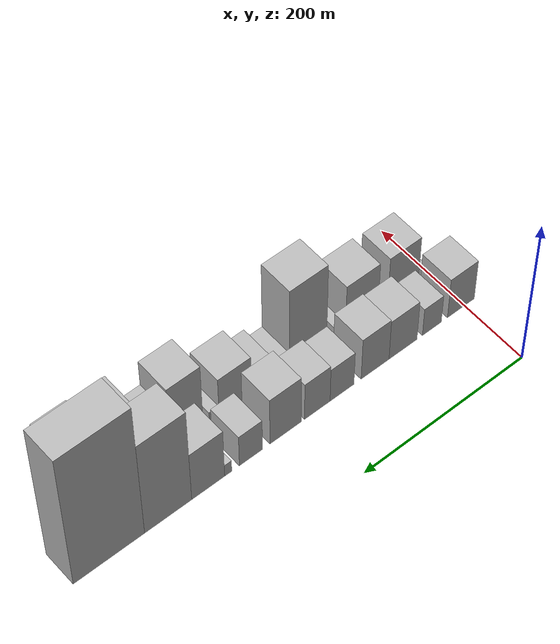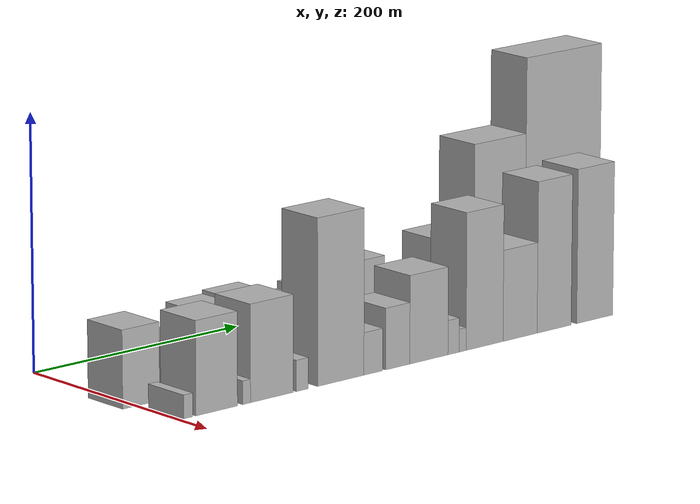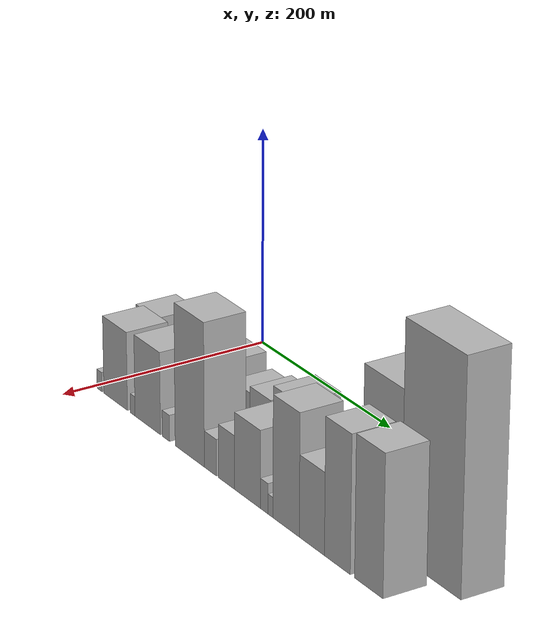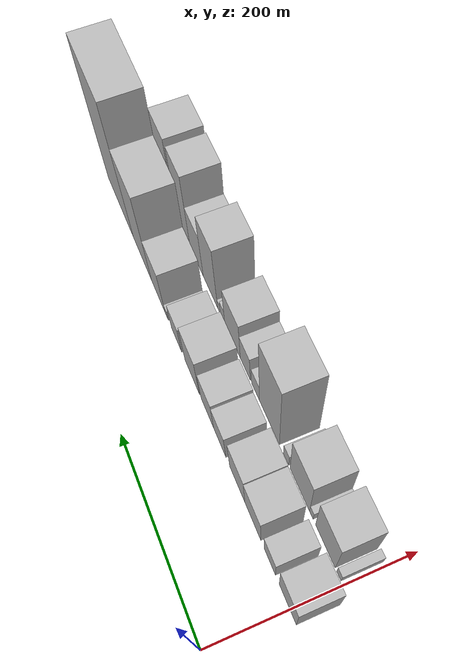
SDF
<sdf version="1.6">
 <world name="default">
  <model name="building_12">
   <static>1</static>
   <pose>100.0000 4.7327 0 0.000000 0.000000 0.000000</pose>
   <link name="link">
    <pose>0 0 30.00 0 0 0</pose>
    <collision name="collision"><geometry><box><size>40.0000 35.2528 60.0000</size></box></geometry></collision>
    <visual name="visual">
     <cast_shadows>0</cast_shadows>
     <geometry><box><size>40.0000 35.2528 60.0000</size></box></geometry>
     <material>
      <script>
       <uri>model://HANNAS_wall/materials/scripts</uri>
       <uri>model://HANNAS_wall/materials/textures</uri>
       <name>vrc/HANNAS_wall</name>
      </script>
     </material>
    </visual>
   </link>
  </model>
  <model name="building_13">
   <static>1</static>
   <pose>100.0000 42.6432 0 0.000000 0.000000 0.000000</pose>
   <link name="link">
    <pose>0 0 21.00 0 0 0</pose>
    <collision name="collision"><geometry><box><size>40.0000 24.5683 42.0000</size></box></geometry></collision>
    <visual name="visual">
     <cast_shadows>0</cast_shadows>
     <geometry><box><size>40.0000 24.5683 42.0000</size></box></geometry>
     <material>
      <script>
       <uri>model://HANNAS_wall/materials/scripts</uri>
       <uri>model://HANNAS_wall/materials/textures</uri>
       <name>vrc/HANNAS_wall</name>
      </script>
     </material>
    </visual>
   </link>
  </model>
  <model name="building_14">
   <static>1</static>
   <pose>100.0000 79.8603 0 0.000000 0.000000 0.000000</pose>
   <link name="link">
    <pose>0 0 30.00 0 0 0</pose>
    <collision name="collision"><geometry><box><size>40.0000 35.8658 60.0000</size></box></geometry></collision>
    <visual name="visual">
     <cast_shadows>0</cast_shadows>
     <geometry><box><size>40.0000 35.8658 60.0000</size></box></geometry>
     <material>
      <script>
       <uri>model://HANNAS_wall/materials/scripts</uri>
       <uri>model://HANNAS_wall/materials/textures</uri>
       <name>vrc/HANNAS_wall</name>
      </script>
     </material>
    </visual>
   </link>
  </model>
  <model name="building_15">
   <static>1</static>
   <pose>100.0000 115.4482 0 0.000000 0.000000 0.000000</pose>
   <link name="link">
    <pose>0 0 31.50 0 0 0</pose>
    <collision name="collision"><geometry><box><size>40.0000 35.3100 63.0000</size></box></geometry></collision>
    <visual name="visual">
     <cast_shadows>0</cast_shadows>
     <geometry><box><size>40.0000 35.3100 63.0000</size></box></geometry>
     <material>
      <script>
       <uri>model://HANNAS_wall/materials/scripts</uri>
       <uri>model://HANNAS_wall/materials/textures</uri>
       <name>vrc/HANNAS_wall</name>
      </script>
     </material>
    </visual>
   </link>
  </model>
  <model name="building_16">
   <static>1</static>
   <pose>100.0000 157.0196 0 0.000000 0.000000 0.000000</pose>
   <link name="link">
    <pose>0 0 25.50 0 0 0</pose>
    <collision name="collision"><geometry><box><size>40.0000 29.8329 51.0000</size></box></geometry></collision>
    <visual name="visual">
     <cast_shadows>0</cast_shadows>
     <geometry><box><size>40.0000 29.8329 51.0000</size></box></geometry>
     <material>
      <script>
       <uri>model://HANNAS_wall/materials/scripts</uri>
       <uri>model://HANNAS_wall/materials/textures</uri>
       <name>vrc/HANNAS_wall</name>
      </script>
     </material>
    </visual>
   </link>
  </model>
  <model name="building_17">
   <static>1</static>
   <pose>100.0000 187.7268 0 0.000000 0.000000 0.000000</pose>
   <link name="link">
    <pose>0 0 28.50 0 0 0</pose>
    <collision name="collision"><geometry><box><size>40.0000 31.5815 57.0000</size></box></geometry></collision>
    <visual name="visual">
     <cast_shadows>0</cast_shadows>
     <geometry><box><size>40.0000 31.5815 57.0000</size></box></geometry>
     <material>
      <script>
       <uri>model://HANNAS_wall/materials/scripts</uri>
       <uri>model://HANNAS_wall/materials/textures</uri>
       <name>vrc/HANNAS_wall</name>
      </script>
     </material>
    </visual>
   </link>
  </model>
  <model name="building_18">
   <static>1</static>
   <pose>100.0000 226.5355 0 0.000000 0.000000 0.000000</pose>
   <link name="link">
    <pose>0 0 36.00 0 0 0</pose>
    <collision name="collision"><geometry><box><size>40.0000 38.0360 72.0000</size></box></geometry></collision>
    <visual name="visual">
     <cast_shadows>0</cast_shadows>
     <geometry><box><size>40.0000 38.0360 72.0000</size></box></geometry>
     <material>
      <script>
       <uri>model://HANNAS_wall/materials/scripts</uri>
       <uri>model://HANNAS_wall/materials/textures</uri>
       <name>vrc/HANNAS_wall</name>
      </script>
     </material>
    </visual>
   </link>
  </model>
  <model name="building_19">
   <static>1</static>
   <pose>100.0000 268.4300 0 0.000000 0.000000 0.000000</pose>
   <link name="link">
    <pose>0 0 24.00 0 0 0</pose>
    <collision name="collision"><geometry><box><size>40.0000 27.7530 48.0000</size></box></geometry></collision>
    <visual name="visual">
     <cast_shadows>0</cast_shadows>
     <geometry><box><size>40.0000 27.7530 48.0000</size></box></geometry>
     <material>
      <script>
       <uri>model://HANNAS_wall/materials/scripts</uri>
       <uri>model://HANNAS_wall/materials/textures</uri>
       <name>vrc/HANNAS_wall</name>
      </script>
     </material>
    </visual>
   </link>
  </model>
  <model name="building_20">
   <static>1</static>
   <pose>100.0000 295.5262 0 0.000000 0.000000 0.000000</pose>
   <link name="link">
    <pose>0 0 9.00 0 0 0</pose>
    <collision name="collision"><geometry><box><size>40.0000 8.4394 18.0000</size></box></geometry></collision>
    <visual name="visual">
     <cast_shadows>0</cast_shadows>
     <geometry><box><size>40.0000 8.4394 18.0000</size></box></geometry>
     <material>
      <script>
       <uri>model://HANNAS_wall/materials/scripts</uri>
       <uri>model://HANNAS_wall/materials/textures</uri>
       <name>vrc/HANNAS_wall</name>
      </script>
     </material>
    </visual>
   </link>
  </model>
  <model name="building_21">
   <static>1</static>
   <pose>100.0000 319.1508 0 0.000000 0.000000 0.000000</pose>
   <link name="link">
    <pose>0 0 37.50 0 0 0</pose>
    <collision name="collision"><geometry><box><size>40.0000 38.8098 75.0000</size></box></geometry></collision>
    <visual name="visual">
     <cast_shadows>0</cast_shadows>
     <geometry><box><size>40.0000 38.8098 75.0000</size></box></geometry>
     <material>
      <script>
       <uri>model://HANNAS_wall/materials/scripts</uri>
       <uri>model://HANNAS_wall/materials/textures</uri>
       <name>vrc/HANNAS_wall</name>
      </script>
     </material>
    </visual>
   </link>
  </model>
  <model name="building_22">
   <static>1</static>
   <pose>100.0000 365.8155 0 0.000000 0.000000 0.000000</pose>
   <link name="link">
    <pose>0 0 72.00 0 0 0</pose>
    <collision name="collision"><geometry><box><size>40.0000 54.5195 144.0000</size></box></geometry></collision>
    <visual name="visual">
     <cast_shadows>0</cast_shadows>
     <geometry><box><size>40.0000 54.5195 144.0000</size></box></geometry>
     <material>
      <script>
       <uri>model://HANNAS_wall/materials/scripts</uri>
       <uri>model://HANNAS_wall/materials/textures</uri>
       <name>vrc/HANNAS_wall</name>
      </script>
     </material>
    </visual>
   </link>
  </model>
  <model name="building_23">
   <static>1</static>
   <pose>100.0000 433.3794 0 0.000000 0.000000 0.000000</pose>
   <link name="link">
    <pose>0 0 102.00 0 0 0</pose>
    <collision name="collision"><geometry><box><size>40.0000 80.6083 204.0000</size></box></geometry></collision>
    <visual name="visual">
     <cast_shadows>0</cast_shadows>
     <geometry><box><size>40.0000 80.6083 204.0000</size></box></geometry>
     <material>
      <script>
       <uri>model://HANNAS_wall/materials/scripts</uri>
       <uri>model://HANNAS_wall/materials/textures</uri>
       <name>vrc/HANNAS_wall</name>
      </script>
     </material>
    </visual>
   </link>
  </model>
  <model name="building_38">
   <static>1</static>
   <pose>149.0000 8.5212 0 0.000000 0.000000 0.000000</pose>
   <link name="link">
    <pose>0 0 9.00 0 0 0</pose>
    <collision name="collision"><geometry><box><size>40.0000 8.6485 18.0000</size></box></geometry></collision>
    <visual name="visual">
     <cast_shadows>0</cast_shadows>
     <geometry><box><size>40.0000 8.6485 18.0000</size></box></geometry>
     <material>
      <script>
       <uri>model://HANNAS_wall/materials/scripts</uri>
       <uri>model://HANNAS_wall/materials/textures</uri>
       <name>vrc/HANNAS_wall</name>
      </script>
     </material>
    </visual>
   </link>
  </model>
  <model name="building_39">
   <static>1</static>
   <pose>149.0000 35.7795 0 0.000000 0.000000 0.000000</pose>
   <link name="link">
    <pose>0 0 36.00 0 0 0</pose>
    <collision name="collision"><geometry><box><size>40.0000 39.8682 72.0000</size></box></geometry></collision>
    <visual name="visual">
     <cast_shadows>0</cast_shadows>
     <geometry><box><size>40.0000 39.8682 72.0000</size></box></geometry>
     <material>
      <script>
       <uri>model://HANNAS_wall/materials/scripts</uri>
       <uri>model://HANNAS_wall/materials/textures</uri>
       <name>vrc/HANNAS_wall</name>
      </script>
     </material>
    </visual>
   </link>
  </model>
  <model name="building_40">
   <static>1</static>
   <pose>149.0000 64.5124 0 0.000000 0.000000 0.000000</pose>
   <link name="link">
    <pose>0 0 9.00 0 0 0</pose>
    <collision name="collision"><geometry><box><size>40.0000 7.5975 18.0000</size></box></geometry></collision>
    <visual name="visual">
     <cast_shadows>0</cast_shadows>
     <geometry><box><size>40.0000 7.5975 18.0000</size></box></geometry>
     <material>
      <script>
       <uri>model://HANNAS_wall/materials/scripts</uri>
       <uri>model://HANNAS_wall/materials/textures</uri>
       <name>vrc/HANNAS_wall</name>
      </script>
     </material>
    </visual>
   </link>
  </model>
  <model name="building_41">
   <static>1</static>
   <pose>149.0000 89.2406 0 0.000000 0.000000 0.000000</pose>
   <link name="link">
    <pose>0 0 37.50 0 0 0</pose>
    <collision name="collision"><geometry><box><size>40.0000 41.8590 75.0000</size></box></geometry></collision>
    <visual name="visual">
     <cast_shadows>0</cast_shadows>
     <geometry><box><size>40.0000 41.8590 75.0000</size></box></geometry>
     <material>
      <script>
       <uri>model://HANNAS_wall/materials/scripts</uri>
       <uri>model://HANNAS_wall/materials/textures</uri>
       <name>vrc/HANNAS_wall</name>
      </script>
     </material>
    </visual>
   </link>
  </model>
  <model name="building_42">
   <static>1</static>
   <pose>149.0000 119.0910 0 0.000000 0.000000 0.000000</pose>
   <link name="link">
    <pose>0 0 12.00 0 0 0</pose>
    <collision name="collision"><geometry><box><size>40.0000 11.8417 24.0000</size></box></geometry></collision>
    <visual name="visual">
     <cast_shadows>0</cast_shadows>
     <geometry><box><size>40.0000 11.8417 24.0000</size></box></geometry>
     <material>
      <script>
       <uri>model://HANNAS_wall/materials/scripts</uri>
       <uri>model://HANNAS_wall/materials/textures</uri>
       <name>vrc/HANNAS_wall</name>
      </script>
     </material>
    </visual>
   </link>
  </model>
  <model name="building_43">
   <static>1</static>
   <pose>149.0000 157.1485 0 0.000000 0.000000 0.000000</pose>
   <link name="link">
    <pose>0 0 64.50 0 0 0</pose>
    <collision name="collision"><geometry><box><size>40.0000 46.2735 129.0000</size></box></geometry></collision>
    <visual name="visual">
     <cast_shadows>0</cast_shadows>
     <geometry><box><size>40.0000 46.2735 129.0000</size></box></geometry>
     <material>
      <script>
       <uri>model://HANNAS_wall/materials/scripts</uri>
       <uri>model://HANNAS_wall/materials/textures</uri>
       <name>vrc/HANNAS_wall</name>
      </script>
     </material>
    </visual>
   </link>
  </model>
  <model name="building_44">
   <static>1</static>
   <pose>149.0000 189.7757 0 0.000000 0.000000 0.000000</pose>
   <link name="link">
    <pose>0 0 16.50 0 0 0</pose>
    <collision name="collision"><geometry><box><size>40.0000 18.9808 33.0000</size></box></geometry></collision>
    <visual name="visual">
     <cast_shadows>0</cast_shadows>
     <geometry><box><size>40.0000 18.9808 33.0000</size></box></geometry>
     <material>
      <script>
       <uri>model://HANNAS_wall/materials/scripts</uri>
       <uri>model://HANNAS_wall/materials/textures</uri>
       <name>vrc/HANNAS_wall</name>
      </script>
     </material>
    </visual>
   </link>
  </model>
  <model name="building_45">
   <static>1</static>
   <pose>149.0000 214.5137 0 0.000000 0.000000 0.000000</pose>
   <link name="link">
    <pose>0 0 24.00 0 0 0</pose>
    <collision name="collision"><geometry><box><size>40.0000 24.4952 48.0000</size></box></geometry></collision>
    <visual name="visual">
     <cast_shadows>0</cast_shadows>
     <geometry><box><size>40.0000 24.4952 48.0000</size></box></geometry>
     <material>
      <script>
       <uri>model://HANNAS_wall/materials/scripts</uri>
       <uri>model://HANNAS_wall/materials/textures</uri>
       <name>vrc/HANNAS_wall</name>
      </script>
     </material>
    </visual>
   </link>
  </model>
  <model name="building_46">
   <static>1</static>
   <pose>149.0000 246.3811 0 0.000000 0.000000 0.000000</pose>
   <link name="link">
    <pose>0 0 34.50 0 0 0</pose>
    <collision name="collision"><geometry><box><size>40.0000 39.2397 69.0000</size></box></geometry></collision>
    <visual name="visual">
     <cast_shadows>0</cast_shadows>
     <geometry><box><size>40.0000 39.2397 69.0000</size></box></geometry>
     <material>
      <script>
       <uri>model://HANNAS_wall/materials/scripts</uri>
       <uri>model://HANNAS_wall/materials/textures</uri>
       <name>vrc/HANNAS_wall</name>
      </script>
     </material>
    </visual>
   </link>
  </model>
  <model name="building_47">
   <static>1</static>
   <pose>149.0000 271.7485 0 0.000000 0.000000 0.000000</pose>
   <link name="link">
    <pose>0 0 13.50 0 0 0</pose>
    <collision name="collision"><geometry><box><size>40.0000 11.4951 27.0000</size></box></geometry></collision>
    <visual name="visual">
     <cast_shadows>0</cast_shadows>
     <geometry><box><size>40.0000 11.4951 27.0000</size></box></geometry>
     <material>
      <script>
       <uri>model://HANNAS_wall/materials/scripts</uri>
       <uri>model://HANNAS_wall/materials/textures</uri>
       <name>vrc/HANNAS_wall</name>
      </script>
     </material>
    </visual>
   </link>
  </model>
  <model name="building_48">
   <static>1</static>
   <pose>149.0000 281.1371 0 0.000000 0.000000 0.000000</pose>
   <link name="link">
    <pose>0 0 9.00 0 0 0</pose>
    <collision name="collision"><geometry><box><size>40.0000 7.2820 18.0000</size></box></geometry></collision>
    <visual name="visual">
     <cast_shadows>0</cast_shadows>
     <geometry><box><size>40.0000 7.2820 18.0000</size></box></geometry>
     <material>
      <script>
       <uri>model://HANNAS_wall/materials/scripts</uri>
       <uri>model://HANNAS_wall/materials/textures</uri>
       <name>vrc/HANNAS_wall</name>
      </script>
     </material>
    </visual>
   </link>
  </model>
  <model name="building_49">
   <static>1</static>
   <pose>149.0000 304.0903 0 0.000000 0.000000 0.000000</pose>
   <link name="link">
    <pose>0 0 54.00 0 0 0</pose>
    <collision name="collision"><geometry><box><size>40.0000 38.6244 108.0000</size></box></geometry></collision>
    <visual name="visual">
     <cast_shadows>0</cast_shadows>
     <geometry><box><size>40.0000 38.6244 108.0000</size></box></geometry>
     <material>
      <script>
       <uri>model://HANNAS_wall/materials/scripts</uri>
       <uri>model://HANNAS_wall/materials/textures</uri>
       <name>vrc/HANNAS_wall</name>
      </script>
     </material>
    </visual>
   </link>
  </model>
  <model name="building_50">
   <static>1</static>
   <pose>149.0000 341.4548 0 0.000000 0.000000 0.000000</pose>
   <link name="link">
    <pose>0 0 36.00 0 0 0</pose>
    <collision name="collision"><geometry><box><size>40.0000 36.1046 72.0000</size></box></geometry></collision>
    <visual name="visual">
     <cast_shadows>0</cast_shadows>
     <geometry><box><size>40.0000 36.1046 72.0000</size></box></geometry>
     <material>
      <script>
       <uri>model://HANNAS_wall/materials/scripts</uri>
       <uri>model://HANNAS_wall/materials/textures</uri>
       <name>vrc/HANNAS_wall</name>
      </script>
     </material>
    </visual>
   </link>
  </model>
  <model name="building_51">
   <static>1</static>
   <pose>149.0000 377.6896 0 0.000000 0.000000 0.000000</pose>
   <link name="link">
    <pose>0 0 60.00 0 0 0</pose>
    <collision name="collision"><geometry><box><size>40.0000 36.3651 120.0000</size></box></geometry></collision>
    <visual name="visual">
     <cast_shadows>0</cast_shadows>
     <geometry><box><size>40.0000 36.3651 120.0000</size></box></geometry>
     <material>
      <script>
       <uri>model://HANNAS_wall/materials/scripts</uri>
       <uri>model://HANNAS_wall/materials/textures</uri>
       <name>vrc/HANNAS_wall</name>
      </script>
     </material>
    </visual>
   </link>
  </model>
  <model name="building_52">
   <static>1</static>
   <pose>149.0000 421.4247 0 0.000000 0.000000 0.000000</pose>
   <link name="link">
    <pose>0 0 61.50 0 0 0</pose>
    <collision name="collision"><geometry><box><size>40.0000 39.1051 123.0000</size></box></geometry></collision>
    <visual name="visual">
     <cast_shadows>0</cast_shadows>
     <geometry><box><size>40.0000 39.1051 123.0000</size></box></geometry>
     <material>
      <script>
       <uri>model://HANNAS_wall/materials/scripts</uri>
       <uri>model://HANNAS_wall/materials/textures</uri>
       <name>vrc/HANNAS_wall</name>
      </script>
     </material>
    </visual>
   </link>
  </model>
 </world>
</sdf>
